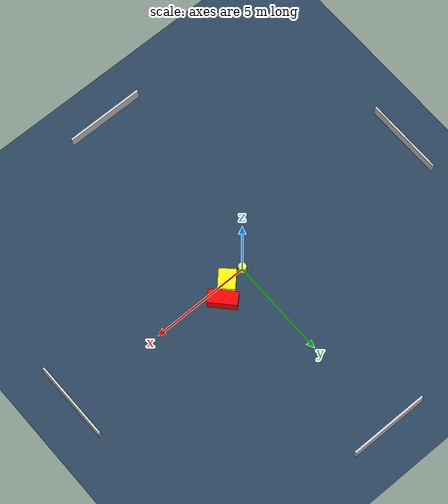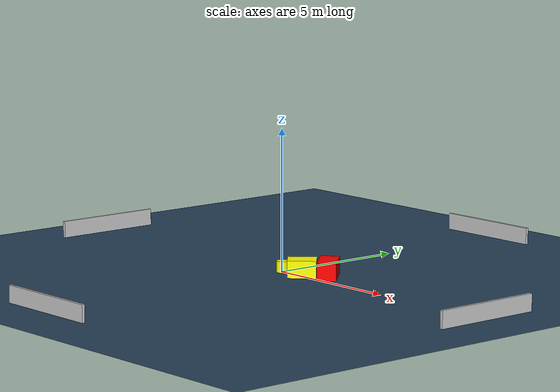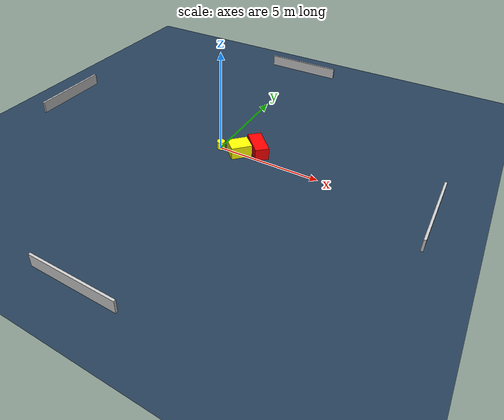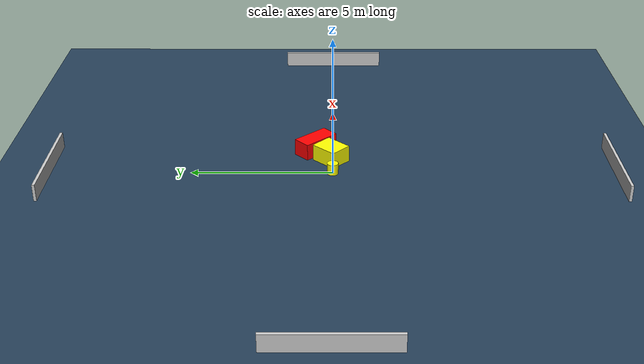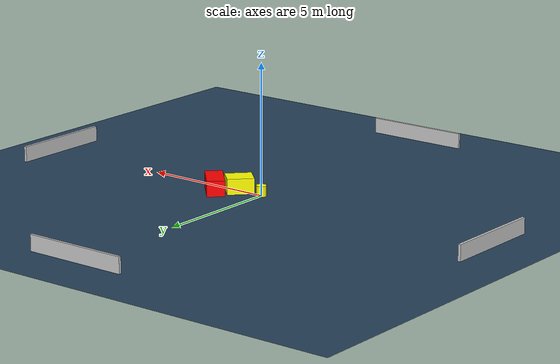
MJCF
<?xml version="1.0" ?>
<mujoco model="generated_environment">
  <option timestep="0.01" integrator="RK4" cone="elliptic"/>
  <default>
    <geom density="1"/>
  </default>
  <asset>
    <texture builtin="gradient" height="3072" name="skybox" rgb1="0.3 0.5 0.7" rgb2="0 0 0" type="skybox" width="512"/>
    <texture builtin="checker" height="300" name="groundplane" rgb1="0.2 0.3 0.4" rgb2="0.1 0.2 0.3" type="2d" width="300"/>
    <material name="groundplane" reflectance="0.2" texrepeat="5 5" texture="groundplane"/>
  </asset>
  <worldbody>
    <light dir="0 0 -1" directional="true" pos="0 0 1.5"/>
    <geom condim="3" friction="0.5 0.005 0.001" material="groundplane" name="floor" pos="0 0 0" size="0 0 0.05" type="plane"/>
    <body name="walls">
      <geom name="wall_1" condim="4" pos="-10.0 0.0 0.3" rgba="0.800000011920929 0.800000011920929 0.800000011920929 1.0" size="0.05 2.0 0.3" type="box"/>
      <geom name="wall_2" condim="4" pos="10.0 0.0 0.3" rgba="0.800000011920929 0.800000011920929 0.800000011920929 1.0" size="0.05 2.0 0.3" type="box"/>
      <geom name="wall_3" condim="4" pos="0.0 -10.0 0.3" rgba="0.800000011920929 0.800000011920929 0.800000011920929 1.0" size="2.0 0.05 0.3" type="box"/>
      <geom name="wall_4" condim="4" pos="0.0 10.0 0.3" rgba="0.800000011920929 0.800000011920929 0.800000011920929 1.0" size="2.0 0.05 0.3" type="box"/>
    </body>
    <body name="robot">
      <joint name="joint_x" type="slide" pos="0 0 0" axis="1 0 0"/>
      <joint name="joint_y" type="slide" pos="0 0 0" axis="0 1 0"/>
      <geom name="robot" type="cylinder" pos="0.0 0.0 0.2" size="0.2 0.2 0.0" mass="5.0" friction="1.0 0.005 0.0001" condim="4" rgba="1.0 1.0 0.0 1.0"/>
    </body>
    <body name="obstacle_1_movable">
      <geom name="obstacle_1_movable" condim="4" pos="0.9801960699549603 0.0652868520238599 0.3" euler="0 0 46.50775917770602" friction="0.0 0.005 0.001" rgba="1.0 1.0 0.0 1.0" size="0.5030089125309867 0.4149715729048421 0.3" type="box" mass="0.1"/>
      <joint type="free"/>
    </body>
    <body name="obstacle_2_static">
      <geom name="obstacle_2_static" condim="4" pos="1.6986911437365895 0.6231833140400409 0.3" euler="0 0 133.02054278147878" friction="0.0 0.005 0.001" rgba="1.0 0.0 0.0 1.0" size="0.7106932721909223 0.334167059021781 0.3" type="box"/>
    </body>
  </worldbody>
  <actuator>
    <motor name="actuator_x" joint="joint_x" gear="1" ctrlrange="-1 1"/>
    <motor name="actuator_y" joint="joint_y" gear="1" ctrlrange="-1 1"/>
  </actuator>
</mujoco>
